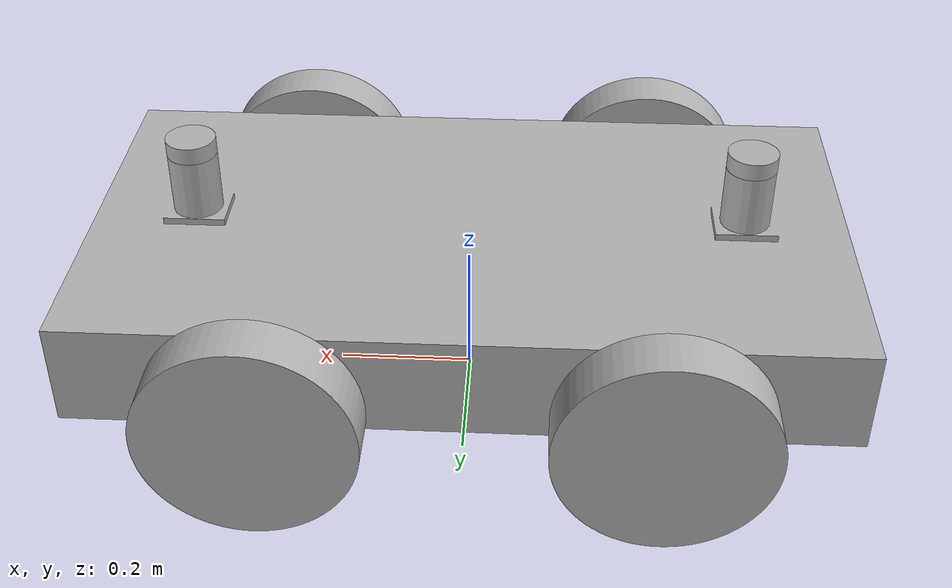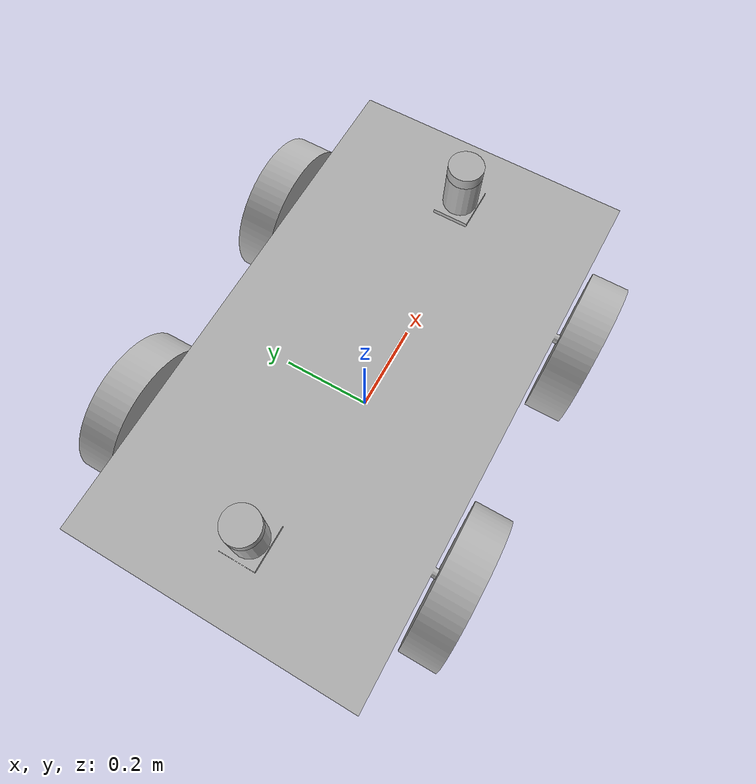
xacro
<?xml version="1.0" ?>
<robot name="Sim" xmlns:xacro="http://www.ros.org/wiki/xacro">

<xacro:include filename="$(find Sim_description)/urdf/materials.xacro" />
<xacro:include filename="$(find Sim_description)/urdf/Sim.trans" />
<xacro:include filename="$(find Sim_description)/urdf/Sim.gazebo" />
<link name="base_link">
  <inertial>
    <origin xyz="9.657441145336423e-17 4.662187118974434e-17 0.1922071264168383" rpy="0 0 0"/>
    <mass value="105.87326333113442"/>
    <inertia ixx="3.360993" iyy="10.941231" izz="13.879755" ixy="-0.0" iyz="0.0" ixz="-0.0"/>
  </inertial>
  <visual>
    <origin xyz="0 0 0" rpy="0 0 0"/>
    <geometry>
      <mesh filename="package://Sim_description/meshes/base_link.stl" scale="0.001 0.001 0.001"/>
    </geometry>
    <material name="silver"/>
  </visual>
  <collision>
    <origin xyz="0 0 0" rpy="0 0 0"/>
    <geometry>
      <mesh filename="package://Sim_description/meshes/base_link.stl" scale="0.001 0.001 0.001"/>
    </geometry>
  </collision>
</link>

<link name="wheel1_1">
  <inertial>
    <origin xyz="-1.1102230246251565e-16 -0.03810000000000002 3.6914915568786455e-15" rpy="0 0 0"/>
    <mass value="5.17079983877615"/>
    <inertia ixx="0.032526" iyy="0.060048" izz="0.032526" ixy="0.0" iyz="0.0" ixz="0.0"/>
  </inertial>
  <visual>
    <origin xyz="-0.275 0.31 -0.1524" rpy="0 0 0"/>
    <geometry>
      <mesh filename="package://Sim_description/meshes/wheel1_1.stl" scale="0.001 0.001 0.001"/>
    </geometry>
    <material name="silver"/>
  </visual>
  <collision>
    <origin xyz="-0.275 0.31 -0.1524" rpy="0 0 0"/>
    <geometry>
      <mesh filename="package://Sim_description/meshes/wheel1_1.stl" scale="0.001 0.001 0.001"/>
    </geometry>
  </collision>
</link>

<link name="wheel4_1">
  <inertial>
    <origin xyz="-5.551115123125783e-17 -0.038099999999999856 3.6914915568786455e-15" rpy="0 0 0"/>
    <mass value="5.17079983877615"/>
    <inertia ixx="0.032526" iyy="0.060048" izz="0.032526" ixy="-0.0" iyz="0.0" ixz="0.0"/>
  </inertial>
  <visual>
    <origin xyz="0.275 0.31 -0.1524" rpy="0 0 0"/>
    <geometry>
      <mesh filename="package://Sim_description/meshes/wheel4_1.stl" scale="0.001 0.001 0.001"/>
    </geometry>
    <material name="silver"/>
  </visual>
  <collision>
    <origin xyz="0.275 0.31 -0.1524" rpy="0 0 0"/>
    <geometry>
      <mesh filename="package://Sim_description/meshes/wheel4_1.stl" scale="0.001 0.001 0.001"/>
    </geometry>
  </collision>
</link>

<link name="wheel3_1">
  <inertial>
    <origin xyz="1.1102230246251565e-16 0.03810000000000002 3.6914915568786455e-15" rpy="0 0 0"/>
    <mass value="5.17079983877615"/>
    <inertia ixx="0.032526" iyy="0.060048" izz="0.032526" ixy="-0.0" iyz="-0.0" ixz="0.0"/>
  </inertial>
  <visual>
    <origin xyz="0.275 -0.31 -0.1524" rpy="0 0 0"/>
    <geometry>
      <mesh filename="package://Sim_description/meshes/wheel3_1.stl" scale="0.001 0.001 0.001"/>
    </geometry>
    <material name="silver"/>
  </visual>
  <collision>
    <origin xyz="0.275 -0.31 -0.1524" rpy="0 0 0"/>
    <geometry>
      <mesh filename="package://Sim_description/meshes/wheel3_1.stl" scale="0.001 0.001 0.001"/>
    </geometry>
  </collision>
</link>

<link name="wheel2_1">
  <inertial>
    <origin xyz="1.1102230246251565e-16 0.038099999999999856 3.6914915568786455e-15" rpy="0 0 0"/>
    <mass value="5.17079983877615"/>
    <inertia ixx="0.032526" iyy="0.060048" izz="0.032526" ixy="0.0" iyz="0.0" ixz="0.0"/>
  </inertial>
  <visual>
    <origin xyz="-0.275 -0.31 -0.1524" rpy="0 0 0"/>
    <geometry>
      <mesh filename="package://Sim_description/meshes/wheel2_1.stl" scale="0.001 0.001 0.001"/>
    </geometry>
    <material name="silver"/>
  </visual>
  <collision>
    <origin xyz="-0.275 -0.31 -0.1524" rpy="0 0 0"/>
    <geometry>
      <mesh filename="package://Sim_description/meshes/wheel2_1.stl" scale="0.001 0.001 0.001"/>
    </geometry>
  </collision>
</link>

<link name="lidar_1">
  <inertial>
    <origin xyz="5.551115123125783e-17 -1.388112759759698e-16 0.01250000000000373" rpy="0 0 0"/>
    <mass value="0.10789485809488791"/>
    <inertia ixx="4.1e-05" iyy="4.1e-05" izz="7e-05" ixy="-0.0" iyz="-0.0" ixz="0.0"/>
  </inertial>
  <visual>
    <origin xyz="-0.4 0.0 -0.36615" rpy="0 0 0"/>
    <geometry>
      <mesh filename="package://Sim_description/meshes/lidar_1.stl" scale="0.001 0.001 0.001"/>
    </geometry>
    <material name="silver"/>
  </visual>
  <collision>
    <origin xyz="-0.4 0.0 -0.36615" rpy="0 0 0"/>
    <geometry>
      <mesh filename="package://Sim_description/meshes/lidar_1.stl" scale="0.001 0.001 0.001"/>
    </geometry>
  </collision>
</link>

<link name="lidar_2">
  <inertial>
    <origin xyz="-5.551115123125783e-17 1.2764224993406777e-16 0.01250000000000373" rpy="0 0 0"/>
    <mass value="0.10789485809488791"/>
    <inertia ixx="4.1e-05" iyy="4.1e-05" izz="7e-05" ixy="-0.0" iyz="-0.0" ixz="-0.0"/>
  </inertial>
  <visual>
    <origin xyz="0.4 -0.0 -0.36615" rpy="0 0 0"/>
    <geometry>
      <mesh filename="package://Sim_description/meshes/lidar_2.stl" scale="0.001 0.001 0.001"/>
    </geometry>
    <material name="silver"/>
  </visual>
  <collision>
    <origin xyz="0.4 -0.0 -0.36615" rpy="0 0 0"/>
    <geometry>
      <mesh filename="package://Sim_description/meshes/lidar_2.stl" scale="0.001 0.001 0.001"/>
    </geometry>
  </collision>
</link>

<joint name="Rev6" type="continuous">
  <origin xyz="0.275 -0.31 0.1524" rpy="0 0 0"/>
  <parent link="base_link"/>
  <child link="wheel1_1"/>
  <axis xyz="-0.0 -1.0 0.0"/>
</joint>

<joint name="Rev7" type="continuous">
  <origin xyz="-0.275 -0.31 0.1524" rpy="0 0 0"/>
  <parent link="base_link"/>
  <child link="wheel4_1"/>
  <axis xyz="-0.0 -1.0 0.0"/>
</joint>

<joint name="Rev8" type="continuous">
  <origin xyz="-0.275 0.31 0.1524" rpy="0 0 0"/>
  <parent link="base_link"/>
  <child link="wheel3_1"/>
  <axis xyz="0.0 1.0 0.0"/>
</joint>

<joint name="Rev9" type="continuous">
  <origin xyz="0.275 0.31 0.1524" rpy="0 0 0"/>
  <parent link="base_link"/>
  <child link="wheel2_1"/>
  <axis xyz="0.0 1.0 0.0"/>
</joint>

<joint name="Rigid11" type="fixed">
  <origin xyz="0.4 0.0 0.36615" rpy="0 0 0"/>
  <parent link="base_link"/>
  <child link="lidar_1"/>
</joint>

<joint name="Rigid12" type="fixed">
  <origin xyz="-0.4 0.0 0.36615" rpy="0 0 0"/>
  <parent link="base_link"/>
  <child link="lidar_2"/>
</joint>

</robot>

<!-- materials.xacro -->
<robot name="Sim" xmlns:xacro="http://www.ros.org/wiki/xacro" >

<material name="silver">
  <color rgba="0.700 0.700 0.700 1.000"/>
</material>

</robot>

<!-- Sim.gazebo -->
<robot name="Sim" xmlns:xacro="http://www.ros.org/wiki/xacro" >

<xacro:property name="body_color" value="Gazebo/Silver" />

<gazebo>
  <plugin name="control" filename="libgazebo_ros_control.so"/>
</gazebo>
<gazebo reference="base_link">
  <material>${body_color}</material>
  <mu1>0.2</mu1>
  <mu2>0.2</mu2>
  <selfCollide>true</selfCollide>
  <gravity>true</gravity>
</gazebo>

<gazebo reference="wheel1_1">
  <material>${body_color}</material>
  <mu1>0.2</mu1>
  <mu2>0.2</mu2>
  <selfCollide>true</selfCollide>
</gazebo>

<gazebo reference="wheel4_1">
  <material>${body_color}</material>
  <mu1>0.2</mu1>
  <mu2>0.2</mu2>
  <selfCollide>true</selfCollide>
</gazebo>

<gazebo reference="wheel3_1">
  <material>${body_color}</material>
  <mu1>0.2</mu1>
  <mu2>0.2</mu2>
  <selfCollide>true</selfCollide>
</gazebo>

<gazebo reference="wheel2_1">
  <material>${body_color}</material>
  <mu1>0.2</mu1>
  <mu2>0.2</mu2>
  <selfCollide>true</selfCollide>
</gazebo>

<gazebo reference="lidar_1">
  <material>${body_color}</material>
  <mu1>0.2</mu1>
  <mu2>0.2</mu2>
  <selfCollide>true</selfCollide>
</gazebo>

<gazebo reference="lidar_2">
  <material>${body_color}</material>
  <mu1>0.2</mu1>
  <mu2>0.2</mu2>
  <selfCollide>true</selfCollide>
</gazebo>

</robot>
